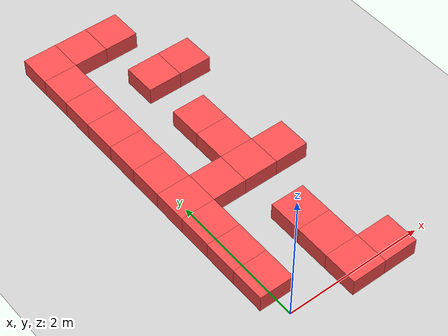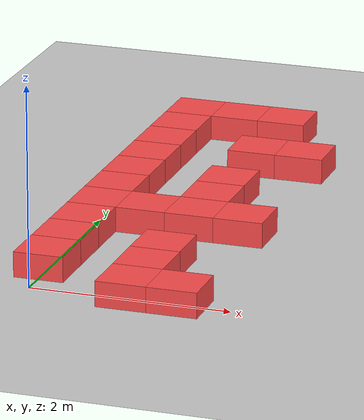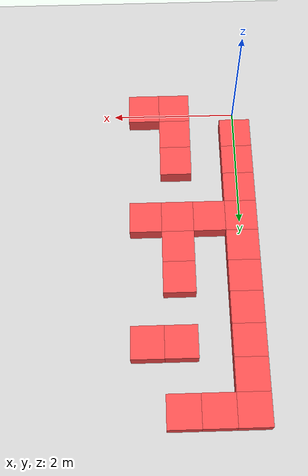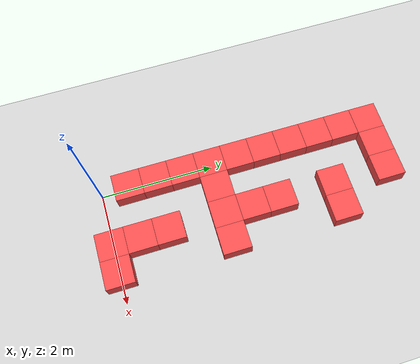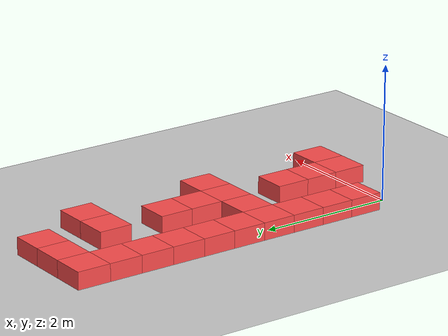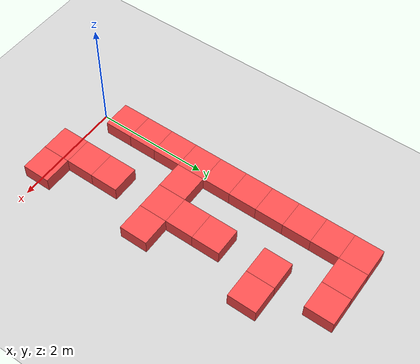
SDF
<sdf version="1.6">
 <world name="default">
  <model name="ground_plane">
   <static>1</static>
   <link name="link">
    <collision name="collision">
     <geometry><plane><normal>0 0 1</normal><size>100 100</size></plane></geometry>
     <surface><friction><ode><mu>100</mu><mu2>50</mu2></ode></friction></surface>
    </collision>
    <visual name="visual">
     <cast_shadows>0</cast_shadows>
     <geometry><plane><normal>0 0 1</normal><size>100 100</size></plane></geometry>
     <material>
      <script><uri>file://media/materials/scripts/gazebo.material</uri><name>Gazebo/Grey</name></script>
     </material>
    </visual>
   </link>
  </model>
  <model name="Box_Red_1">
   <link name="link_0">
    <inertial>
     <mass>1</mass>
     <inertia>
      <ixx>0.166667</ixx>
      <ixy>0</ixy>
      <ixz>0</ixz>
      <iyy>0.166667</iyy>
      <iyz>0</iyz>
      <izz>0.166667</izz>
     </inertia>
    </inertial>
    <visual name="visual">
     <geometry><box><size>0.5 0.5 0.5</size></box></geometry>
     <material>
      <lighting>1</lighting>
      <script><uri>file://media/materials/scripts/gazebo.material</uri><name>Gazebo/Grey</name></script>
      <ambient>1 0.3 0.3 1</ambient>
      <diffuse>0.7 0.7 0.7 1</diffuse>
      <specular>0.01 0.01 0.01 1</specular>
      <emissive>0 0 0 1</emissive>
      <shader type="vertex"><normal_map>__default__</normal_map></shader>
     </material>
    </visual>
    <collision name="collision">
     <geometry><box><size>0.5 0.5 0.5</size></box></geometry>
     <surface>
      <friction>
       <ode><mu>1</mu><mu2>1</mu2><fdir1>0 0 0</fdir1><slip1>0</slip1><slip2>0</slip2></ode>
       <torsional>
        <coefficient>1</coefficient>
        <patch_radius>0</patch_radius>
        <surface_radius>0</surface_radius>
        <use_patch_radius>1</use_patch_radius>
        <ode><slip>0</slip></ode>
       </torsional>
      </friction>
      <bounce><restitution_coefficient>0</restitution_coefficient><threshold>1e+06</threshold></bounce>
      <contact>
       <collide_without_contact>0</collide_without_contact>
       <collide_without_contact_bitmask>1</collide_without_contact_bitmask>
       <collide_bitmask>1</collide_bitmask>
       <ode>
        <soft_cfm>0</soft_cfm>
        <soft_erp>0.2</soft_erp>
        <kp>1e+13</kp>
        <kd>1</kd>
        <max_vel>0.01</max_vel>
        <min_depth>0</min_depth>
       </ode>
       <bullet>
        <split_impulse>1</split_impulse>
        <split_impulse_penetration_threshold>-0.01</split_impulse_penetration_threshold>
        <soft_cfm>0</soft_cfm>
        <soft_erp>0.2</soft_erp>
        <kp>1e+13</kp>
        <kd>1</kd>
       </bullet>
      </contact>
     </surface>
    </collision>
   </link>
   <static>0</static>
   <pose>0.000 0.500 0.000 0 0 0</pose>
  </model>
  <model name="Box_Red_2">
   <link name="link_0">
    <inertial>
     <mass>1</mass>
     <inertia>
      <ixx>0.166667</ixx>
      <ixy>0</ixy>
      <ixz>0</ixz>
      <iyy>0.166667</iyy>
      <iyz>0</iyz>
      <izz>0.166667</izz>
     </inertia>
    </inertial>
    <visual name="visual">
     <geometry><box><size>0.5 0.5 0.5</size></box></geometry>
     <material>
      <lighting>1</lighting>
      <script><uri>file://media/materials/scripts/gazebo.material</uri><name>Gazebo/Grey</name></script>
      <ambient>1 0.3 0.3 1</ambient>
      <diffuse>0.7 0.7 0.7 1</diffuse>
      <specular>0.01 0.01 0.01 1</specular>
      <emissive>0 0 0 1</emissive>
      <shader type="vertex"><normal_map>__default__</normal_map></shader>
     </material>
    </visual>
    <collision name="collision">
     <geometry><box><size>0.5 0.5 0.5</size></box></geometry>
     <surface>
      <friction>
       <ode><mu>1</mu><mu2>1</mu2><fdir1>0 0 0</fdir1><slip1>0</slip1><slip2>0</slip2></ode>
       <torsional>
        <coefficient>1</coefficient>
        <patch_radius>0</patch_radius>
        <surface_radius>0</surface_radius>
        <use_patch_radius>1</use_patch_radius>
        <ode><slip>0</slip></ode>
       </torsional>
      </friction>
      <bounce><restitution_coefficient>0</restitution_coefficient><threshold>1e+06</threshold></bounce>
      <contact>
       <collide_without_contact>0</collide_without_contact>
       <collide_without_contact_bitmask>1</collide_without_contact_bitmask>
       <collide_bitmask>1</collide_bitmask>
       <ode>
        <soft_cfm>0</soft_cfm>
        <soft_erp>0.2</soft_erp>
        <kp>1e+13</kp>
        <kd>1</kd>
        <max_vel>0.01</max_vel>
        <min_depth>0</min_depth>
       </ode>
       <bullet>
        <split_impulse>1</split_impulse>
        <split_impulse_penetration_threshold>-0.01</split_impulse_penetration_threshold>
        <soft_cfm>0</soft_cfm>
        <soft_erp>0.2</soft_erp>
        <kp>1e+13</kp>
        <kd>1</kd>
       </bullet>
      </contact>
     </surface>
    </collision>
   </link>
   <static>0</static>
   <pose>0.000 1.000 0.000 0 0 0</pose>
  </model>
  <model name="Box_Red_3">
   <link name="link_0">
    <inertial>
     <mass>1</mass>
     <inertia>
      <ixx>0.166667</ixx>
      <ixy>0</ixy>
      <ixz>0</ixz>
      <iyy>0.166667</iyy>
      <iyz>0</iyz>
      <izz>0.166667</izz>
     </inertia>
    </inertial>
    <visual name="visual">
     <geometry><box><size>0.5 0.5 0.5</size></box></geometry>
     <material>
      <lighting>1</lighting>
      <script><uri>file://media/materials/scripts/gazebo.material</uri><name>Gazebo/Grey</name></script>
      <ambient>1 0.3 0.3 1</ambient>
      <diffuse>0.7 0.7 0.7 1</diffuse>
      <specular>0.01 0.01 0.01 1</specular>
      <emissive>0 0 0 1</emissive>
      <shader type="vertex"><normal_map>__default__</normal_map></shader>
     </material>
    </visual>
    <collision name="collision">
     <geometry><box><size>0.5 0.5 0.5</size></box></geometry>
     <surface>
      <friction>
       <ode><mu>1</mu><mu2>1</mu2><fdir1>0 0 0</fdir1><slip1>0</slip1><slip2>0</slip2></ode>
       <torsional>
        <coefficient>1</coefficient>
        <patch_radius>0</patch_radius>
        <surface_radius>0</surface_radius>
        <use_patch_radius>1</use_patch_radius>
        <ode><slip>0</slip></ode>
       </torsional>
      </friction>
      <bounce><restitution_coefficient>0</restitution_coefficient><threshold>1e+06</threshold></bounce>
      <contact>
       <collide_without_contact>0</collide_without_contact>
       <collide_without_contact_bitmask>1</collide_without_contact_bitmask>
       <collide_bitmask>1</collide_bitmask>
       <ode>
        <soft_cfm>0</soft_cfm>
        <soft_erp>0.2</soft_erp>
        <kp>1e+13</kp>
        <kd>1</kd>
        <max_vel>0.01</max_vel>
        <min_depth>0</min_depth>
       </ode>
       <bullet>
        <split_impulse>1</split_impulse>
        <split_impulse_penetration_threshold>-0.01</split_impulse_penetration_threshold>
        <soft_cfm>0</soft_cfm>
        <soft_erp>0.2</soft_erp>
        <kp>1e+13</kp>
        <kd>1</kd>
       </bullet>
      </contact>
     </surface>
    </collision>
   </link>
   <static>0</static>
   <pose>0.000 1.500 0.000 0 0 0</pose>
  </model>
  <model name="Box_Red_4">
   <link name="link_0">
    <inertial>
     <mass>1</mass>
     <inertia>
      <ixx>0.166667</ixx>
      <ixy>0</ixy>
      <ixz>0</ixz>
      <iyy>0.166667</iyy>
      <iyz>0</iyz>
      <izz>0.166667</izz>
     </inertia>
    </inertial>
    <visual name="visual">
     <geometry><box><size>0.5 0.5 0.5</size></box></geometry>
     <material>
      <lighting>1</lighting>
      <script><uri>file://media/materials/scripts/gazebo.material</uri><name>Gazebo/Grey</name></script>
      <ambient>1 0.3 0.3 1</ambient>
      <diffuse>0.7 0.7 0.7 1</diffuse>
      <specular>0.01 0.01 0.01 1</specular>
      <emissive>0 0 0 1</emissive>
      <shader type="vertex"><normal_map>__default__</normal_map></shader>
     </material>
    </visual>
    <collision name="collision">
     <geometry><box><size>0.5 0.5 0.5</size></box></geometry>
     <surface>
      <friction>
       <ode><mu>1</mu><mu2>1</mu2><fdir1>0 0 0</fdir1><slip1>0</slip1><slip2>0</slip2></ode>
       <torsional>
        <coefficient>1</coefficient>
        <patch_radius>0</patch_radius>
        <surface_radius>0</surface_radius>
        <use_patch_radius>1</use_patch_radius>
        <ode><slip>0</slip></ode>
       </torsional>
      </friction>
      <bounce><restitution_coefficient>0</restitution_coefficient><threshold>1e+06</threshold></bounce>
      <contact>
       <collide_without_contact>0</collide_without_contact>
       <collide_without_contact_bitmask>1</collide_without_contact_bitmask>
       <collide_bitmask>1</collide_bitmask>
       <ode>
        <soft_cfm>0</soft_cfm>
        <soft_erp>0.2</soft_erp>
        <kp>1e+13</kp>
        <kd>1</kd>
        <max_vel>0.01</max_vel>
        <min_depth>0</min_depth>
       </ode>
       <bullet>
        <split_impulse>1</split_impulse>
        <split_impulse_penetration_threshold>-0.01</split_impulse_penetration_threshold>
        <soft_cfm>0</soft_cfm>
        <soft_erp>0.2</soft_erp>
        <kp>1e+13</kp>
        <kd>1</kd>
       </bullet>
      </contact>
     </surface>
    </collision>
   </link>
   <static>0</static>
   <pose>0.000 2.000 0.000 0 0 0</pose>
  </model>
  <model name="Box_Red_5">
   <link name="link_0">
    <inertial>
     <mass>1</mass>
     <inertia>
      <ixx>0.166667</ixx>
      <ixy>0</ixy>
      <ixz>0</ixz>
      <iyy>0.166667</iyy>
      <iyz>0</iyz>
      <izz>0.166667</izz>
     </inertia>
    </inertial>
    <visual name="visual">
     <geometry><box><size>0.5 0.5 0.5</size></box></geometry>
     <material>
      <lighting>1</lighting>
      <script><uri>file://media/materials/scripts/gazebo.material</uri><name>Gazebo/Grey</name></script>
      <ambient>1 0.3 0.3 1</ambient>
      <diffuse>0.7 0.7 0.7 1</diffuse>
      <specular>0.01 0.01 0.01 1</specular>
      <emissive>0 0 0 1</emissive>
      <shader type="vertex"><normal_map>__default__</normal_map></shader>
     </material>
    </visual>
    <collision name="collision">
     <geometry><box><size>0.5 0.5 0.5</size></box></geometry>
     <surface>
      <friction>
       <ode><mu>1</mu><mu2>1</mu2><fdir1>0 0 0</fdir1><slip1>0</slip1><slip2>0</slip2></ode>
       <torsional>
        <coefficient>1</coefficient>
        <patch_radius>0</patch_radius>
        <surface_radius>0</surface_radius>
        <use_patch_radius>1</use_patch_radius>
        <ode><slip>0</slip></ode>
       </torsional>
      </friction>
      <bounce><restitution_coefficient>0</restitution_coefficient><threshold>1e+06</threshold></bounce>
      <contact>
       <collide_without_contact>0</collide_without_contact>
       <collide_without_contact_bitmask>1</collide_without_contact_bitmask>
       <collide_bitmask>1</collide_bitmask>
       <ode>
        <soft_cfm>0</soft_cfm>
        <soft_erp>0.2</soft_erp>
        <kp>1e+13</kp>
        <kd>1</kd>
        <max_vel>0.01</max_vel>
        <min_depth>0</min_depth>
       </ode>
       <bullet>
        <split_impulse>1</split_impulse>
        <split_impulse_penetration_threshold>-0.01</split_impulse_penetration_threshold>
        <soft_cfm>0</soft_cfm>
        <soft_erp>0.2</soft_erp>
        <kp>1e+13</kp>
        <kd>1</kd>
       </bullet>
      </contact>
     </surface>
    </collision>
   </link>
   <static>0</static>
   <pose>0.000 2.500 0.000 0 0 0</pose>
  </model>
  <model name="Box_Red_6">
   <link name="link_0">
    <inertial>
     <mass>1</mass>
     <inertia>
      <ixx>0.166667</ixx>
      <ixy>0</ixy>
      <ixz>0</ixz>
      <iyy>0.166667</iyy>
      <iyz>0</iyz>
      <izz>0.166667</izz>
     </inertia>
    </inertial>
    <visual name="visual">
     <geometry><box><size>0.5 0.5 0.5</size></box></geometry>
     <material>
      <lighting>1</lighting>
      <script><uri>file://media/materials/scripts/gazebo.material</uri><name>Gazebo/Grey</name></script>
      <ambient>1 0.3 0.3 1</ambient>
      <diffuse>0.7 0.7 0.7 1</diffuse>
      <specular>0.01 0.01 0.01 1</specular>
      <emissive>0 0 0 1</emissive>
      <shader type="vertex"><normal_map>__default__</normal_map></shader>
     </material>
    </visual>
    <collision name="collision">
     <geometry><box><size>0.5 0.5 0.5</size></box></geometry>
     <surface>
      <friction>
       <ode><mu>1</mu><mu2>1</mu2><fdir1>0 0 0</fdir1><slip1>0</slip1><slip2>0</slip2></ode>
       <torsional>
        <coefficient>1</coefficient>
        <patch_radius>0</patch_radius>
        <surface_radius>0</surface_radius>
        <use_patch_radius>1</use_patch_radius>
        <ode><slip>0</slip></ode>
       </torsional>
      </friction>
      <bounce><restitution_coefficient>0</restitution_coefficient><threshold>1e+06</threshold></bounce>
      <contact>
       <collide_without_contact>0</collide_without_contact>
       <collide_without_contact_bitmask>1</collide_without_contact_bitmask>
       <collide_bitmask>1</collide_bitmask>
       <ode>
        <soft_cfm>0</soft_cfm>
        <soft_erp>0.2</soft_erp>
        <kp>1e+13</kp>
        <kd>1</kd>
        <max_vel>0.01</max_vel>
        <min_depth>0</min_depth>
       </ode>
       <bullet>
        <split_impulse>1</split_impulse>
        <split_impulse_penetration_threshold>-0.01</split_impulse_penetration_threshold>
        <soft_cfm>0</soft_cfm>
        <soft_erp>0.2</soft_erp>
        <kp>1e+13</kp>
        <kd>1</kd>
       </bullet>
      </contact>
     </surface>
    </collision>
   </link>
   <static>0</static>
   <pose>0.000 3.000 0.000 0 0 0</pose>
  </model>
  <model name="Box_Red_7">
   <link name="link_0">
    <inertial>
     <mass>1</mass>
     <inertia>
      <ixx>0.166667</ixx>
      <ixy>0</ixy>
      <ixz>0</ixz>
      <iyy>0.166667</iyy>
      <iyz>0</iyz>
      <izz>0.166667</izz>
     </inertia>
    </inertial>
    <visual name="visual">
     <geometry><box><size>0.5 0.5 0.5</size></box></geometry>
     <material>
      <lighting>1</lighting>
      <script><uri>file://media/materials/scripts/gazebo.material</uri><name>Gazebo/Grey</name></script>
      <ambient>1 0.3 0.3 1</ambient>
      <diffuse>0.7 0.7 0.7 1</diffuse>
      <specular>0.01 0.01 0.01 1</specular>
      <emissive>0 0 0 1</emissive>
      <shader type="vertex"><normal_map>__default__</normal_map></shader>
     </material>
    </visual>
    <collision name="collision">
     <geometry><box><size>0.5 0.5 0.5</size></box></geometry>
     <surface>
      <friction>
       <ode><mu>1</mu><mu2>1</mu2><fdir1>0 0 0</fdir1><slip1>0</slip1><slip2>0</slip2></ode>
       <torsional>
        <coefficient>1</coefficient>
        <patch_radius>0</patch_radius>
        <surface_radius>0</surface_radius>
        <use_patch_radius>1</use_patch_radius>
        <ode><slip>0</slip></ode>
       </torsional>
      </friction>
      <bounce><restitution_coefficient>0</restitution_coefficient><threshold>1e+06</threshold></bounce>
      <contact>
       <collide_without_contact>0</collide_without_contact>
       <collide_without_contact_bitmask>1</collide_without_contact_bitmask>
       <collide_bitmask>1</collide_bitmask>
       <ode>
        <soft_cfm>0</soft_cfm>
        <soft_erp>0.2</soft_erp>
        <kp>1e+13</kp>
        <kd>1</kd>
        <max_vel>0.01</max_vel>
        <min_depth>0</min_depth>
       </ode>
       <bullet>
        <split_impulse>1</split_impulse>
        <split_impulse_penetration_threshold>-0.01</split_impulse_penetration_threshold>
        <soft_cfm>0</soft_cfm>
        <soft_erp>0.2</soft_erp>
        <kp>1e+13</kp>
        <kd>1</kd>
       </bullet>
      </contact>
     </surface>
    </collision>
   </link>
   <static>0</static>
   <pose>0.000 3.500 0.000 0 0 0</pose>
  </model>
  <model name="Box_Red_8">
   <link name="link_0">
    <inertial>
     <mass>1</mass>
     <inertia>
      <ixx>0.166667</ixx>
      <ixy>0</ixy>
      <ixz>0</ixz>
      <iyy>0.166667</iyy>
      <iyz>0</iyz>
      <izz>0.166667</izz>
     </inertia>
    </inertial>
    <visual name="visual">
     <geometry><box><size>0.5 0.5 0.5</size></box></geometry>
     <material>
      <lighting>1</lighting>
      <script><uri>file://media/materials/scripts/gazebo.material</uri><name>Gazebo/Grey</name></script>
      <ambient>1 0.3 0.3 1</ambient>
      <diffuse>0.7 0.7 0.7 1</diffuse>
      <specular>0.01 0.01 0.01 1</specular>
      <emissive>0 0 0 1</emissive>
      <shader type="vertex"><normal_map>__default__</normal_map></shader>
     </material>
    </visual>
    <collision name="collision">
     <geometry><box><size>0.5 0.5 0.5</size></box></geometry>
     <surface>
      <friction>
       <ode><mu>1</mu><mu2>1</mu2><fdir1>0 0 0</fdir1><slip1>0</slip1><slip2>0</slip2></ode>
       <torsional>
        <coefficient>1</coefficient>
        <patch_radius>0</patch_radius>
        <surface_radius>0</surface_radius>
        <use_patch_radius>1</use_patch_radius>
        <ode><slip>0</slip></ode>
       </torsional>
      </friction>
      <bounce><restitution_coefficient>0</restitution_coefficient><threshold>1e+06</threshold></bounce>
      <contact>
       <collide_without_contact>0</collide_without_contact>
       <collide_without_contact_bitmask>1</collide_without_contact_bitmask>
       <collide_bitmask>1</collide_bitmask>
       <ode>
        <soft_cfm>0</soft_cfm>
        <soft_erp>0.2</soft_erp>
        <kp>1e+13</kp>
        <kd>1</kd>
        <max_vel>0.01</max_vel>
        <min_depth>0</min_depth>
       </ode>
       <bullet>
        <split_impulse>1</split_impulse>
        <split_impulse_penetration_threshold>-0.01</split_impulse_penetration_threshold>
        <soft_cfm>0</soft_cfm>
        <soft_erp>0.2</soft_erp>
        <kp>1e+13</kp>
        <kd>1</kd>
       </bullet>
      </contact>
     </surface>
    </collision>
   </link>
   <static>0</static>
   <pose>0.000 4.000 0.000 0 0 0</pose>
  </model>
  <model name="Box_Red_9">
   <link name="link_0">
    <inertial>
     <mass>1</mass>
     <inertia>
      <ixx>0.166667</ixx>
      <ixy>0</ixy>
      <ixz>0</ixz>
      <iyy>0.166667</iyy>
      <iyz>0</iyz>
      <izz>0.166667</izz>
     </inertia>
    </inertial>
    <visual name="visual">
     <geometry><box><size>0.5 0.5 0.5</size></box></geometry>
     <material>
      <lighting>1</lighting>
      <script><uri>file://media/materials/scripts/gazebo.material</uri><name>Gazebo/Grey</name></script>
      <ambient>1 0.3 0.3 1</ambient>
      <diffuse>0.7 0.7 0.7 1</diffuse>
      <specular>0.01 0.01 0.01 1</specular>
      <emissive>0 0 0 1</emissive>
      <shader type="vertex"><normal_map>__default__</normal_map></shader>
     </material>
    </visual>
    <collision name="collision">
     <geometry><box><size>0.5 0.5 0.5</size></box></geometry>
     <surface>
      <friction>
       <ode><mu>1</mu><mu2>1</mu2><fdir1>0 0 0</fdir1><slip1>0</slip1><slip2>0</slip2></ode>
       <torsional>
        <coefficient>1</coefficient>
        <patch_radius>0</patch_radius>
        <surface_radius>0</surface_radius>
        <use_patch_radius>1</use_patch_radius>
        <ode><slip>0</slip></ode>
       </torsional>
      </friction>
      <bounce><restitution_coefficient>0</restitution_coefficient><threshold>1e+06</threshold></bounce>
      <contact>
       <collide_without_contact>0</collide_without_contact>
       <collide_without_contact_bitmask>1</collide_without_contact_bitmask>
       <collide_bitmask>1</collide_bitmask>
       <ode>
        <soft_cfm>0</soft_cfm>
        <soft_erp>0.2</soft_erp>
        <kp>1e+13</kp>
        <kd>1</kd>
        <max_vel>0.01</max_vel>
        <min_depth>0</min_depth>
       </ode>
       <bullet>
        <split_impulse>1</split_impulse>
        <split_impulse_penetration_threshold>-0.01</split_impulse_penetration_threshold>
        <soft_cfm>0</soft_cfm>
        <soft_erp>0.2</soft_erp>
        <kp>1e+13</kp>
        <kd>1</kd>
       </bullet>
      </contact>
     </surface>
    </collision>
   </link>
   <static>0</static>
   <pose>0.000 4.500 0.000 0 0 0</pose>
  </model>
  <model name="Box_Red_10">
   <link name="link_0">
    <inertial>
     <mass>1</mass>
     <inertia>
      <ixx>0.166667</ixx>
      <ixy>0</ixy>
      <ixz>0</ixz>
      <iyy>0.166667</iyy>
      <iyz>0</iyz>
      <izz>0.166667</izz>
     </inertia>
    </inertial>
    <visual name="visual">
     <geometry><box><size>0.5 0.5 0.5</size></box></geometry>
     <material>
      <lighting>1</lighting>
      <script><uri>file://media/materials/scripts/gazebo.material</uri><name>Gazebo/Grey</name></script>
      <ambient>1 0.3 0.3 1</ambient>
      <diffuse>0.7 0.7 0.7 1</diffuse>
      <specular>0.01 0.01 0.01 1</specular>
      <emissive>0 0 0 1</emissive>
      <shader type="vertex"><normal_map>__default__</normal_map></shader>
     </material>
    </visual>
    <collision name="collision">
     <geometry><box><size>0.5 0.5 0.5</size></box></geometry>
     <surface>
      <friction>
       <ode><mu>1</mu><mu2>1</mu2><fdir1>0 0 0</fdir1><slip1>0</slip1><slip2>0</slip2></ode>
       <torsional>
        <coefficient>1</coefficient>
        <patch_radius>0</patch_radius>
        <surface_radius>0</surface_radius>
        <use_patch_radius>1</use_patch_radius>
        <ode><slip>0</slip></ode>
       </torsional>
      </friction>
      <bounce><restitution_coefficient>0</restitution_coefficient><threshold>1e+06</threshold></bounce>
      <contact>
       <collide_without_contact>0</collide_without_contact>
       <collide_without_contact_bitmask>1</collide_without_contact_bitmask>
       <collide_bitmask>1</collide_bitmask>
       <ode>
        <soft_cfm>0</soft_cfm>
        <soft_erp>0.2</soft_erp>
        <kp>1e+13</kp>
        <kd>1</kd>
        <max_vel>0.01</max_vel>
        <min_depth>0</min_depth>
       </ode>
       <bullet>
        <split_impulse>1</split_impulse>
        <split_impulse_penetration_threshold>-0.01</split_impulse_penetration_threshold>
        <soft_cfm>0</soft_cfm>
        <soft_erp>0.2</soft_erp>
        <kp>1e+13</kp>
        <kd>1</kd>
       </bullet>
      </contact>
     </surface>
    </collision>
   </link>
   <static>0</static>
   <pose>0.000 5.000 0.000 0 0 0</pose>
  </model>
  <model name="Box_Red_15">
   <link name="link_0">
    <inertial>
     <mass>1</mass>
     <inertia>
      <ixx>0.166667</ixx>
      <ixy>0</ixy>
      <ixz>0</ixz>
      <iyy>0.166667</iyy>
      <iyz>0</iyz>
      <izz>0.166667</izz>
     </inertia>
    </inertial>
    <visual name="visual">
     <geometry><box><size>0.5 0.5 0.5</size></box></geometry>
     <material>
      <lighting>1</lighting>
      <script><uri>file://media/materials/scripts/gazebo.material</uri><name>Gazebo/Grey</name></script>
      <ambient>1 0.3 0.3 1</ambient>
      <diffuse>0.7 0.7 0.7 1</diffuse>
      <specular>0.01 0.01 0.01 1</specular>
      <emissive>0 0 0 1</emissive>
      <shader type="vertex"><normal_map>__default__</normal_map></shader>
     </material>
    </visual>
    <collision name="collision">
     <geometry><box><size>0.5 0.5 0.5</size></box></geometry>
     <surface>
      <friction>
       <ode><mu>1</mu><mu2>1</mu2><fdir1>0 0 0</fdir1><slip1>0</slip1><slip2>0</slip2></ode>
       <torsional>
        <coefficient>1</coefficient>
        <patch_radius>0</patch_radius>
        <surface_radius>0</surface_radius>
        <use_patch_radius>1</use_patch_radius>
        <ode><slip>0</slip></ode>
       </torsional>
      </friction>
      <bounce><restitution_coefficient>0</restitution_coefficient><threshold>1e+06</threshold></bounce>
      <contact>
       <collide_without_contact>0</collide_without_contact>
       <collide_without_contact_bitmask>1</collide_without_contact_bitmask>
       <collide_bitmask>1</collide_bitmask>
       <ode>
        <soft_cfm>0</soft_cfm>
        <soft_erp>0.2</soft_erp>
        <kp>1e+13</kp>
        <kd>1</kd>
        <max_vel>0.01</max_vel>
        <min_depth>0</min_depth>
       </ode>
       <bullet>
        <split_impulse>1</split_impulse>
        <split_impulse_penetration_threshold>-0.01</split_impulse_penetration_threshold>
        <soft_cfm>0</soft_cfm>
        <soft_erp>0.2</soft_erp>
        <kp>1e+13</kp>
        <kd>1</kd>
       </bullet>
      </contact>
     </surface>
    </collision>
   </link>
   <static>0</static>
   <pose>0.500 2.000 0.000 0 0 0</pose>
  </model>
  <model name="Box_Red_21">
   <link name="link_0">
    <inertial>
     <mass>1</mass>
     <inertia>
      <ixx>0.166667</ixx>
      <ixy>0</ixy>
      <ixz>0</ixz>
      <iyy>0.166667</iyy>
      <iyz>0</iyz>
      <izz>0.166667</izz>
     </inertia>
    </inertial>
    <visual name="visual">
     <geometry><box><size>0.5 0.5 0.5</size></box></geometry>
     <material>
      <lighting>1</lighting>
      <script><uri>file://media/materials/scripts/gazebo.material</uri><name>Gazebo/Grey</name></script>
      <ambient>1 0.3 0.3 1</ambient>
      <diffuse>0.7 0.7 0.7 1</diffuse>
      <specular>0.01 0.01 0.01 1</specular>
      <emissive>0 0 0 1</emissive>
      <shader type="vertex"><normal_map>__default__</normal_map></shader>
     </material>
    </visual>
    <collision name="collision">
     <geometry><box><size>0.5 0.5 0.5</size></box></geometry>
     <surface>
      <friction>
       <ode><mu>1</mu><mu2>1</mu2><fdir1>0 0 0</fdir1><slip1>0</slip1><slip2>0</slip2></ode>
       <torsional>
        <coefficient>1</coefficient>
        <patch_radius>0</patch_radius>
        <surface_radius>0</surface_radius>
        <use_patch_radius>1</use_patch_radius>
        <ode><slip>0</slip></ode>
       </torsional>
      </friction>
      <bounce><restitution_coefficient>0</restitution_coefficient><threshold>1e+06</threshold></bounce>
      <contact>
       <collide_without_contact>0</collide_without_contact>
       <collide_without_contact_bitmask>1</collide_without_contact_bitmask>
       <collide_bitmask>1</collide_bitmask>
       <ode>
        <soft_cfm>0</soft_cfm>
        <soft_erp>0.2</soft_erp>
        <kp>1e+13</kp>
        <kd>1</kd>
        <max_vel>0.01</max_vel>
        <min_depth>0</min_depth>
       </ode>
       <bullet>
        <split_impulse>1</split_impulse>
        <split_impulse_penetration_threshold>-0.01</split_impulse_penetration_threshold>
        <soft_cfm>0</soft_cfm>
        <soft_erp>0.2</soft_erp>
        <kp>1e+13</kp>
        <kd>1</kd>
       </bullet>
      </contact>
     </surface>
    </collision>
   </link>
   <static>0</static>
   <pose>0.500 5.000 0.000 0 0 0</pose>
  </model>
  <model name="Box_Red_22">
   <link name="link_0">
    <inertial>
     <mass>1</mass>
     <inertia>
      <ixx>0.166667</ixx>
      <ixy>0</ixy>
      <ixz>0</ixz>
      <iyy>0.166667</iyy>
      <iyz>0</iyz>
      <izz>0.166667</izz>
     </inertia>
    </inertial>
    <visual name="visual">
     <geometry><box><size>0.5 0.5 0.5</size></box></geometry>
     <material>
      <lighting>1</lighting>
      <script><uri>file://media/materials/scripts/gazebo.material</uri><name>Gazebo/Grey</name></script>
      <ambient>1 0.3 0.3 1</ambient>
      <diffuse>0.7 0.7 0.7 1</diffuse>
      <specular>0.01 0.01 0.01 1</specular>
      <emissive>0 0 0 1</emissive>
      <shader type="vertex"><normal_map>__default__</normal_map></shader>
     </material>
    </visual>
    <collision name="collision">
     <geometry><box><size>0.5 0.5 0.5</size></box></geometry>
     <surface>
      <friction>
       <ode><mu>1</mu><mu2>1</mu2><fdir1>0 0 0</fdir1><slip1>0</slip1><slip2>0</slip2></ode>
       <torsional>
        <coefficient>1</coefficient>
        <patch_radius>0</patch_radius>
        <surface_radius>0</surface_radius>
        <use_patch_radius>1</use_patch_radius>
        <ode><slip>0</slip></ode>
       </torsional>
      </friction>
      <bounce><restitution_coefficient>0</restitution_coefficient><threshold>1e+06</threshold></bounce>
      <contact>
       <collide_without_contact>0</collide_without_contact>
       <collide_without_contact_bitmask>1</collide_without_contact_bitmask>
       <collide_bitmask>1</collide_bitmask>
       <ode>
        <soft_cfm>0</soft_cfm>
        <soft_erp>0.2</soft_erp>
        <kp>1e+13</kp>
        <kd>1</kd>
        <max_vel>0.01</max_vel>
        <min_depth>0</min_depth>
       </ode>
       <bullet>
        <split_impulse>1</split_impulse>
        <split_impulse_penetration_threshold>-0.01</split_impulse_penetration_threshold>
        <soft_cfm>0</soft_cfm>
        <soft_erp>0.2</soft_erp>
        <kp>1e+13</kp>
        <kd>1</kd>
       </bullet>
      </contact>
     </surface>
    </collision>
   </link>
   <static>0</static>
   <pose>1.000 0.000 0.000 0 0 0</pose>
  </model>
  <model name="Box_Red_23">
   <link name="link_0">
    <inertial>
     <mass>1</mass>
     <inertia>
      <ixx>0.166667</ixx>
      <ixy>0</ixy>
      <ixz>0</ixz>
      <iyy>0.166667</iyy>
      <iyz>0</iyz>
      <izz>0.166667</izz>
     </inertia>
    </inertial>
    <visual name="visual">
     <geometry><box><size>0.5 0.5 0.5</size></box></geometry>
     <material>
      <lighting>1</lighting>
      <script><uri>file://media/materials/scripts/gazebo.material</uri><name>Gazebo/Grey</name></script>
      <ambient>1 0.3 0.3 1</ambient>
      <diffuse>0.7 0.7 0.7 1</diffuse>
      <specular>0.01 0.01 0.01 1</specular>
      <emissive>0 0 0 1</emissive>
      <shader type="vertex"><normal_map>__default__</normal_map></shader>
     </material>
    </visual>
    <collision name="collision">
     <geometry><box><size>0.5 0.5 0.5</size></box></geometry>
     <surface>
      <friction>
       <ode><mu>1</mu><mu2>1</mu2><fdir1>0 0 0</fdir1><slip1>0</slip1><slip2>0</slip2></ode>
       <torsional>
        <coefficient>1</coefficient>
        <patch_radius>0</patch_radius>
        <surface_radius>0</surface_radius>
        <use_patch_radius>1</use_patch_radius>
        <ode><slip>0</slip></ode>
       </torsional>
      </friction>
      <bounce><restitution_coefficient>0</restitution_coefficient><threshold>1e+06</threshold></bounce>
      <contact>
       <collide_without_contact>0</collide_without_contact>
       <collide_without_contact_bitmask>1</collide_without_contact_bitmask>
       <collide_bitmask>1</collide_bitmask>
       <ode>
        <soft_cfm>0</soft_cfm>
        <soft_erp>0.2</soft_erp>
        <kp>1e+13</kp>
        <kd>1</kd>
        <max_vel>0.01</max_vel>
        <min_depth>0</min_depth>
       </ode>
       <bullet>
        <split_impulse>1</split_impulse>
        <split_impulse_penetration_threshold>-0.01</split_impulse_penetration_threshold>
        <soft_cfm>0</soft_cfm>
        <soft_erp>0.2</soft_erp>
        <kp>1e+13</kp>
        <kd>1</kd>
       </bullet>
      </contact>
     </surface>
    </collision>
   </link>
   <static>0</static>
   <pose>1.000 0.500 0.000 0 0 0</pose>
  </model>
  <model name="Box_Red_24">
   <link name="link_0">
    <inertial>
     <mass>1</mass>
     <inertia>
      <ixx>0.166667</ixx>
      <ixy>0</ixy>
      <ixz>0</ixz>
      <iyy>0.166667</iyy>
      <iyz>0</iyz>
      <izz>0.166667</izz>
     </inertia>
    </inertial>
    <visual name="visual">
     <geometry><box><size>0.5 0.5 0.5</size></box></geometry>
     <material>
      <lighting>1</lighting>
      <script><uri>file://media/materials/scripts/gazebo.material</uri><name>Gazebo/Grey</name></script>
      <ambient>1 0.3 0.3 1</ambient>
      <diffuse>0.7 0.7 0.7 1</diffuse>
      <specular>0.01 0.01 0.01 1</specular>
      <emissive>0 0 0 1</emissive>
      <shader type="vertex"><normal_map>__default__</normal_map></shader>
     </material>
    </visual>
    <collision name="collision">
     <geometry><box><size>0.5 0.5 0.5</size></box></geometry>
     <surface>
      <friction>
       <ode><mu>1</mu><mu2>1</mu2><fdir1>0 0 0</fdir1><slip1>0</slip1><slip2>0</slip2></ode>
       <torsional>
        <coefficient>1</coefficient>
        <patch_radius>0</patch_radius>
        <surface_radius>0</surface_radius>
        <use_patch_radius>1</use_patch_radius>
        <ode><slip>0</slip></ode>
       </torsional>
      </friction>
      <bounce><restitution_coefficient>0</restitution_coefficient><threshold>1e+06</threshold></bounce>
      <contact>
       <collide_without_contact>0</collide_without_contact>
       <collide_without_contact_bitmask>1</collide_without_contact_bitmask>
       <collide_bitmask>1</collide_bitmask>
       <ode>
        <soft_cfm>0</soft_cfm>
        <soft_erp>0.2</soft_erp>
        <kp>1e+13</kp>
        <kd>1</kd>
        <max_vel>0.01</max_vel>
        <min_depth>0</min_depth>
       </ode>
       <bullet>
        <split_impulse>1</split_impulse>
        <split_impulse_penetration_threshold>-0.01</split_impulse_penetration_threshold>
        <soft_cfm>0</soft_cfm>
        <soft_erp>0.2</soft_erp>
        <kp>1e+13</kp>
        <kd>1</kd>
       </bullet>
      </contact>
     </surface>
    </collision>
   </link>
   <static>0</static>
   <pose>1.000 1.000 0.000 0 0 0</pose>
  </model>
  <model name="Box_Red_26">
   <link name="link_0">
    <inertial>
     <mass>1</mass>
     <inertia>
      <ixx>0.166667</ixx>
      <ixy>0</ixy>
      <ixz>0</ixz>
      <iyy>0.166667</iyy>
      <iyz>0</iyz>
      <izz>0.166667</izz>
     </inertia>
    </inertial>
    <visual name="visual">
     <geometry><box><size>0.5 0.5 0.5</size></box></geometry>
     <material>
      <lighting>1</lighting>
      <script><uri>file://media/materials/scripts/gazebo.material</uri><name>Gazebo/Grey</name></script>
      <ambient>1 0.3 0.3 1</ambient>
      <diffuse>0.7 0.7 0.7 1</diffuse>
      <specular>0.01 0.01 0.01 1</specular>
      <emissive>0 0 0 1</emissive>
      <shader type="vertex"><normal_map>__default__</normal_map></shader>
     </material>
    </visual>
    <collision name="collision">
     <geometry><box><size>0.5 0.5 0.5</size></box></geometry>
     <surface>
      <friction>
       <ode><mu>1</mu><mu2>1</mu2><fdir1>0 0 0</fdir1><slip1>0</slip1><slip2>0</slip2></ode>
       <torsional>
        <coefficient>1</coefficient>
        <patch_radius>0</patch_radius>
        <surface_radius>0</surface_radius>
        <use_patch_radius>1</use_patch_radius>
        <ode><slip>0</slip></ode>
       </torsional>
      </friction>
      <bounce><restitution_coefficient>0</restitution_coefficient><threshold>1e+06</threshold></bounce>
      <contact>
       <collide_without_contact>0</collide_without_contact>
       <collide_without_contact_bitmask>1</collide_without_contact_bitmask>
       <collide_bitmask>1</collide_bitmask>
       <ode>
        <soft_cfm>0</soft_cfm>
        <soft_erp>0.2</soft_erp>
        <kp>1e+13</kp>
        <kd>1</kd>
        <max_vel>0.01</max_vel>
        <min_depth>0</min_depth>
       </ode>
       <bullet>
        <split_impulse>1</split_impulse>
        <split_impulse_penetration_threshold>-0.01</split_impulse_penetration_threshold>
        <soft_cfm>0</soft_cfm>
        <soft_erp>0.2</soft_erp>
        <kp>1e+13</kp>
        <kd>1</kd>
       </bullet>
      </contact>
     </surface>
    </collision>
   </link>
   <static>0</static>
   <pose>1.000 2.000 0.000 0 0 0</pose>
  </model>
  <model name="Box_Red_27">
   <link name="link_0">
    <inertial>
     <mass>1</mass>
     <inertia>
      <ixx>0.166667</ixx>
      <ixy>0</ixy>
      <ixz>0</ixz>
      <iyy>0.166667</iyy>
      <iyz>0</iyz>
      <izz>0.166667</izz>
     </inertia>
    </inertial>
    <visual name="visual">
     <geometry><box><size>0.5 0.5 0.5</size></box></geometry>
     <material>
      <lighting>1</lighting>
      <script><uri>file://media/materials/scripts/gazebo.material</uri><name>Gazebo/Grey</name></script>
      <ambient>1 0.3 0.3 1</ambient>
      <diffuse>0.7 0.7 0.7 1</diffuse>
      <specular>0.01 0.01 0.01 1</specular>
      <emissive>0 0 0 1</emissive>
      <shader type="vertex"><normal_map>__default__</normal_map></shader>
     </material>
    </visual>
    <collision name="collision">
     <geometry><box><size>0.5 0.5 0.5</size></box></geometry>
     <surface>
      <friction>
       <ode><mu>1</mu><mu2>1</mu2><fdir1>0 0 0</fdir1><slip1>0</slip1><slip2>0</slip2></ode>
       <torsional>
        <coefficient>1</coefficient>
        <patch_radius>0</patch_radius>
        <surface_radius>0</surface_radius>
        <use_patch_radius>1</use_patch_radius>
        <ode><slip>0</slip></ode>
       </torsional>
      </friction>
      <bounce><restitution_coefficient>0</restitution_coefficient><threshold>1e+06</threshold></bounce>
      <contact>
       <collide_without_contact>0</collide_without_contact>
       <collide_without_contact_bitmask>1</collide_without_contact_bitmask>
       <collide_bitmask>1</collide_bitmask>
       <ode>
        <soft_cfm>0</soft_cfm>
        <soft_erp>0.2</soft_erp>
        <kp>1e+13</kp>
        <kd>1</kd>
        <max_vel>0.01</max_vel>
        <min_depth>0</min_depth>
       </ode>
       <bullet>
        <split_impulse>1</split_impulse>
        <split_impulse_penetration_threshold>-0.01</split_impulse_penetration_threshold>
        <soft_cfm>0</soft_cfm>
        <soft_erp>0.2</soft_erp>
        <kp>1e+13</kp>
        <kd>1</kd>
       </bullet>
      </contact>
     </surface>
    </collision>
   </link>
   <static>0</static>
   <pose>1.000 2.500 0.000 0 0 0</pose>
  </model>
  <model name="Box_Red_28">
   <link name="link_0">
    <inertial>
     <mass>1</mass>
     <inertia>
      <ixx>0.166667</ixx>
      <ixy>0</ixy>
      <ixz>0</ixz>
      <iyy>0.166667</iyy>
      <iyz>0</iyz>
      <izz>0.166667</izz>
     </inertia>
    </inertial>
    <visual name="visual">
     <geometry><box><size>0.5 0.5 0.5</size></box></geometry>
     <material>
      <lighting>1</lighting>
      <script><uri>file://media/materials/scripts/gazebo.material</uri><name>Gazebo/Grey</name></script>
      <ambient>1 0.3 0.3 1</ambient>
      <diffuse>0.7 0.7 0.7 1</diffuse>
      <specular>0.01 0.01 0.01 1</specular>
      <emissive>0 0 0 1</emissive>
      <shader type="vertex"><normal_map>__default__</normal_map></shader>
     </material>
    </visual>
    <collision name="collision">
     <geometry><box><size>0.5 0.5 0.5</size></box></geometry>
     <surface>
      <friction>
       <ode><mu>1</mu><mu2>1</mu2><fdir1>0 0 0</fdir1><slip1>0</slip1><slip2>0</slip2></ode>
       <torsional>
        <coefficient>1</coefficient>
        <patch_radius>0</patch_radius>
        <surface_radius>0</surface_radius>
        <use_patch_radius>1</use_patch_radius>
        <ode><slip>0</slip></ode>
       </torsional>
      </friction>
      <bounce><restitution_coefficient>0</restitution_coefficient><threshold>1e+06</threshold></bounce>
      <contact>
       <collide_without_contact>0</collide_without_contact>
       <collide_without_contact_bitmask>1</collide_without_contact_bitmask>
       <collide_bitmask>1</collide_bitmask>
       <ode>
        <soft_cfm>0</soft_cfm>
        <soft_erp>0.2</soft_erp>
        <kp>1e+13</kp>
        <kd>1</kd>
        <max_vel>0.01</max_vel>
        <min_depth>0</min_depth>
       </ode>
       <bullet>
        <split_impulse>1</split_impulse>
        <split_impulse_penetration_threshold>-0.01</split_impulse_penetration_threshold>
        <soft_cfm>0</soft_cfm>
        <soft_erp>0.2</soft_erp>
        <kp>1e+13</kp>
        <kd>1</kd>
       </bullet>
      </contact>
     </surface>
    </collision>
   </link>
   <static>0</static>
   <pose>1.000 3.000 0.000 0 0 0</pose>
  </model>
  <model name="Box_Red_30">
   <link name="link_0">
    <inertial>
     <mass>1</mass>
     <inertia>
      <ixx>0.166667</ixx>
      <ixy>0</ixy>
      <ixz>0</ixz>
      <iyy>0.166667</iyy>
      <iyz>0</iyz>
      <izz>0.166667</izz>
     </inertia>
    </inertial>
    <visual name="visual">
     <geometry><box><size>0.5 0.5 0.5</size></box></geometry>
     <material>
      <lighting>1</lighting>
      <script><uri>file://media/materials/scripts/gazebo.material</uri><name>Gazebo/Grey</name></script>
      <ambient>1 0.3 0.3 1</ambient>
      <diffuse>0.7 0.7 0.7 1</diffuse>
      <specular>0.01 0.01 0.01 1</specular>
      <emissive>0 0 0 1</emissive>
      <shader type="vertex"><normal_map>__default__</normal_map></shader>
     </material>
    </visual>
    <collision name="collision">
     <geometry><box><size>0.5 0.5 0.5</size></box></geometry>
     <surface>
      <friction>
       <ode><mu>1</mu><mu2>1</mu2><fdir1>0 0 0</fdir1><slip1>0</slip1><slip2>0</slip2></ode>
       <torsional>
        <coefficient>1</coefficient>
        <patch_radius>0</patch_radius>
        <surface_radius>0</surface_radius>
        <use_patch_radius>1</use_patch_radius>
        <ode><slip>0</slip></ode>
       </torsional>
      </friction>
      <bounce><restitution_coefficient>0</restitution_coefficient><threshold>1e+06</threshold></bounce>
      <contact>
       <collide_without_contact>0</collide_without_contact>
       <collide_without_contact_bitmask>1</collide_without_contact_bitmask>
       <collide_bitmask>1</collide_bitmask>
       <ode>
        <soft_cfm>0</soft_cfm>
        <soft_erp>0.2</soft_erp>
        <kp>1e+13</kp>
        <kd>1</kd>
        <max_vel>0.01</max_vel>
        <min_depth>0</min_depth>
       </ode>
       <bullet>
        <split_impulse>1</split_impulse>
        <split_impulse_penetration_threshold>-0.01</split_impulse_penetration_threshold>
        <soft_cfm>0</soft_cfm>
        <soft_erp>0.2</soft_erp>
        <kp>1e+13</kp>
        <kd>1</kd>
       </bullet>
      </contact>
     </surface>
    </collision>
   </link>
   <static>0</static>
   <pose>1.000 4.000 0.000 0 0 0</pose>
  </model>
  <model name="Box_Red_32">
   <link name="link_0">
    <inertial>
     <mass>1</mass>
     <inertia>
      <ixx>0.166667</ixx>
      <ixy>0</ixy>
      <ixz>0</ixz>
      <iyy>0.166667</iyy>
      <iyz>0</iyz>
      <izz>0.166667</izz>
     </inertia>
    </inertial>
    <visual name="visual">
     <geometry><box><size>0.5 0.5 0.5</size></box></geometry>
     <material>
      <lighting>1</lighting>
      <script><uri>file://media/materials/scripts/gazebo.material</uri><name>Gazebo/Grey</name></script>
      <ambient>1 0.3 0.3 1</ambient>
      <diffuse>0.7 0.7 0.7 1</diffuse>
      <specular>0.01 0.01 0.01 1</specular>
      <emissive>0 0 0 1</emissive>
      <shader type="vertex"><normal_map>__default__</normal_map></shader>
     </material>
    </visual>
    <collision name="collision">
     <geometry><box><size>0.5 0.5 0.5</size></box></geometry>
     <surface>
      <friction>
       <ode><mu>1</mu><mu2>1</mu2><fdir1>0 0 0</fdir1><slip1>0</slip1><slip2>0</slip2></ode>
       <torsional>
        <coefficient>1</coefficient>
        <patch_radius>0</patch_radius>
        <surface_radius>0</surface_radius>
        <use_patch_radius>1</use_patch_radius>
        <ode><slip>0</slip></ode>
       </torsional>
      </friction>
      <bounce><restitution_coefficient>0</restitution_coefficient><threshold>1e+06</threshold></bounce>
      <contact>
       <collide_without_contact>0</collide_without_contact>
       <collide_without_contact_bitmask>1</collide_without_contact_bitmask>
       <collide_bitmask>1</collide_bitmask>
       <ode>
        <soft_cfm>0</soft_cfm>
        <soft_erp>0.2</soft_erp>
        <kp>1e+13</kp>
        <kd>1</kd>
        <max_vel>0.01</max_vel>
        <min_depth>0</min_depth>
       </ode>
       <bullet>
        <split_impulse>1</split_impulse>
        <split_impulse_penetration_threshold>-0.01</split_impulse_penetration_threshold>
        <soft_cfm>0</soft_cfm>
        <soft_erp>0.2</soft_erp>
        <kp>1e+13</kp>
        <kd>1</kd>
       </bullet>
      </contact>
     </surface>
    </collision>
   </link>
   <static>0</static>
   <pose>1.000 5.000 0.000 0 0 0</pose>
  </model>
  <model name="Box_Red_33">
   <link name="link_0">
    <inertial>
     <mass>1</mass>
     <inertia>
      <ixx>0.166667</ixx>
      <ixy>0</ixy>
      <ixz>0</ixz>
      <iyy>0.166667</iyy>
      <iyz>0</iyz>
      <izz>0.166667</izz>
     </inertia>
    </inertial>
    <visual name="visual">
     <geometry><box><size>0.5 0.5 0.5</size></box></geometry>
     <material>
      <lighting>1</lighting>
      <script><uri>file://media/materials/scripts/gazebo.material</uri><name>Gazebo/Grey</name></script>
      <ambient>1 0.3 0.3 1</ambient>
      <diffuse>0.7 0.7 0.7 1</diffuse>
      <specular>0.01 0.01 0.01 1</specular>
      <emissive>0 0 0 1</emissive>
      <shader type="vertex"><normal_map>__default__</normal_map></shader>
     </material>
    </visual>
    <collision name="collision">
     <geometry><box><size>0.5 0.5 0.5</size></box></geometry>
     <surface>
      <friction>
       <ode><mu>1</mu><mu2>1</mu2><fdir1>0 0 0</fdir1><slip1>0</slip1><slip2>0</slip2></ode>
       <torsional>
        <coefficient>1</coefficient>
        <patch_radius>0</patch_radius>
        <surface_radius>0</surface_radius>
        <use_patch_radius>1</use_patch_radius>
        <ode><slip>0</slip></ode>
       </torsional>
      </friction>
      <bounce><restitution_coefficient>0</restitution_coefficient><threshold>1e+06</threshold></bounce>
      <contact>
       <collide_without_contact>0</collide_without_contact>
       <collide_without_contact_bitmask>1</collide_without_contact_bitmask>
       <collide_bitmask>1</collide_bitmask>
       <ode>
        <soft_cfm>0</soft_cfm>
        <soft_erp>0.2</soft_erp>
        <kp>1e+13</kp>
        <kd>1</kd>
        <max_vel>0.01</max_vel>
        <min_depth>0</min_depth>
       </ode>
       <bullet>
        <split_impulse>1</split_impulse>
        <split_impulse_penetration_threshold>-0.01</split_impulse_penetration_threshold>
        <soft_cfm>0</soft_cfm>
        <soft_erp>0.2</soft_erp>
        <kp>1e+13</kp>
        <kd>1</kd>
       </bullet>
      </contact>
     </surface>
    </collision>
   </link>
   <static>0</static>
   <pose>1.500 0.000 0.000 0 0 0</pose>
  </model>
  <model name="Box_Red_37">
   <link name="link_0">
    <inertial>
     <mass>1</mass>
     <inertia>
      <ixx>0.166667</ixx>
      <ixy>0</ixy>
      <ixz>0</ixz>
      <iyy>0.166667</iyy>
      <iyz>0</iyz>
      <izz>0.166667</izz>
     </inertia>
    </inertial>
    <visual name="visual">
     <geometry><box><size>0.5 0.5 0.5</size></box></geometry>
     <material>
      <lighting>1</lighting>
      <script><uri>file://media/materials/scripts/gazebo.material</uri><name>Gazebo/Grey</name></script>
      <ambient>1 0.3 0.3 1</ambient>
      <diffuse>0.7 0.7 0.7 1</diffuse>
      <specular>0.01 0.01 0.01 1</specular>
      <emissive>0 0 0 1</emissive>
      <shader type="vertex"><normal_map>__default__</normal_map></shader>
     </material>
    </visual>
    <collision name="collision">
     <geometry><box><size>0.5 0.5 0.5</size></box></geometry>
     <surface>
      <friction>
       <ode><mu>1</mu><mu2>1</mu2><fdir1>0 0 0</fdir1><slip1>0</slip1><slip2>0</slip2></ode>
       <torsional>
        <coefficient>1</coefficient>
        <patch_radius>0</patch_radius>
        <surface_radius>0</surface_radius>
        <use_patch_radius>1</use_patch_radius>
        <ode><slip>0</slip></ode>
       </torsional>
      </friction>
      <bounce><restitution_coefficient>0</restitution_coefficient><threshold>1e+06</threshold></bounce>
      <contact>
       <collide_without_contact>0</collide_without_contact>
       <collide_without_contact_bitmask>1</collide_without_contact_bitmask>
       <collide_bitmask>1</collide_bitmask>
       <ode>
        <soft_cfm>0</soft_cfm>
        <soft_erp>0.2</soft_erp>
        <kp>1e+13</kp>
        <kd>1</kd>
        <max_vel>0.01</max_vel>
        <min_depth>0</min_depth>
       </ode>
       <bullet>
        <split_impulse>1</split_impulse>
        <split_impulse_penetration_threshold>-0.01</split_impulse_penetration_threshold>
        <soft_cfm>0</soft_cfm>
        <soft_erp>0.2</soft_erp>
        <kp>1e+13</kp>
        <kd>1</kd>
       </bullet>
      </contact>
     </surface>
    </collision>
   </link>
   <static>0</static>
   <pose>1.500 2.000 0.000 0 0 0</pose>
  </model>
  <model name="Box_Red_41">
   <link name="link_0">
    <inertial>
     <mass>1</mass>
     <inertia>
      <ixx>0.166667</ixx>
      <ixy>0</ixy>
      <ixz>0</ixz>
      <iyy>0.166667</iyy>
      <iyz>0</iyz>
      <izz>0.166667</izz>
     </inertia>
    </inertial>
    <visual name="visual">
     <geometry><box><size>0.5 0.5 0.5</size></box></geometry>
     <material>
      <lighting>1</lighting>
      <script><uri>file://media/materials/scripts/gazebo.material</uri><name>Gazebo/Grey</name></script>
      <ambient>1 0.3 0.3 1</ambient>
      <diffuse>0.7 0.7 0.7 1</diffuse>
      <specular>0.01 0.01 0.01 1</specular>
      <emissive>0 0 0 1</emissive>
      <shader type="vertex"><normal_map>__default__</normal_map></shader>
     </material>
    </visual>
    <collision name="collision">
     <geometry><box><size>0.5 0.5 0.5</size></box></geometry>
     <surface>
      <friction>
       <ode><mu>1</mu><mu2>1</mu2><fdir1>0 0 0</fdir1><slip1>0</slip1><slip2>0</slip2></ode>
       <torsional>
        <coefficient>1</coefficient>
        <patch_radius>0</patch_radius>
        <surface_radius>0</surface_radius>
        <use_patch_radius>1</use_patch_radius>
        <ode><slip>0</slip></ode>
       </torsional>
      </friction>
      <bounce><restitution_coefficient>0</restitution_coefficient><threshold>1e+06</threshold></bounce>
      <contact>
       <collide_without_contact>0</collide_without_contact>
       <collide_without_contact_bitmask>1</collide_without_contact_bitmask>
       <collide_bitmask>1</collide_bitmask>
       <ode>
        <soft_cfm>0</soft_cfm>
        <soft_erp>0.2</soft_erp>
        <kp>1e+13</kp>
        <kd>1</kd>
        <max_vel>0.01</max_vel>
        <min_depth>0</min_depth>
       </ode>
       <bullet>
        <split_impulse>1</split_impulse>
        <split_impulse_penetration_threshold>-0.01</split_impulse_penetration_threshold>
        <soft_cfm>0</soft_cfm>
        <soft_erp>0.2</soft_erp>
        <kp>1e+13</kp>
        <kd>1</kd>
       </bullet>
      </contact>
     </surface>
    </collision>
   </link>
   <static>0</static>
   <pose>1.500 4.000 0.000 0 0 0</pose>
  </model>
 </world>
</sdf>
